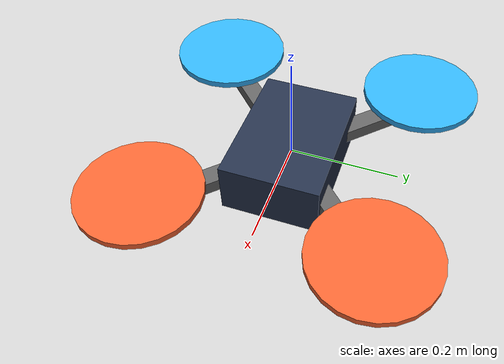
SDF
<?xml version="1.0"?>
<sdf version="1.9"><model name="quadrotor">
  <link name="base_link">
    <inertial><mass>1.0</mass><inertia><ixx>0.01</ixx><iyy>0.01</iyy><izz>0.02</izz></inertia></inertial>
    <collision name="hull"><geometry><box><size>0.64 0.64 0.16</size></box></geometry></collision>
    <visual name="body"><geometry><box><size>0.25 0.18 0.10</size></box></geometry><material><diffuse>0.15 0.2 0.3 1</diffuse></material></visual>
    <visual name="arm_x"><geometry><box><size>0.57 0.035 0.025</size></box></geometry><pose>0 0 0 0 0 0.785398</pose><material><diffuse>0.4 0.4 0.4 1</diffuse></material></visual>
    <visual name="arm_y"><geometry><box><size>0.57 0.035 0.025</size></box></geometry><pose>0 0 0 0 0 -0.785398</pose><material><diffuse>0.4 0.4 0.4 1</diffuse></material></visual>
    <visual name="rotor_0"><pose>-0.2 0.2 0.035 0 0 0</pose><geometry><cylinder><radius>0.11</radius><length>0.012</length></cylinder></geometry><material><diffuse>0.2 0.7 1 1</diffuse></material></visual>
    <visual name="rotor_1"><pose>-0.2 -0.2 0.035 0 0 0</pose><geometry><cylinder><radius>0.11</radius><length>0.012</length></cylinder></geometry><material><diffuse>0.2 0.7 1 1</diffuse></material></visual>
    <visual name="rotor_2"><pose>0.2 -0.2 0.035 0 0 0</pose><geometry><cylinder><radius>0.11</radius><length>0.012</length></cylinder></geometry><material><diffuse>1 0.4 0.2 1</diffuse></material></visual>
    <visual name="rotor_3"><pose>0.2 0.2 0.035 0 0 0</pose><geometry><cylinder><radius>0.11</radius><length>0.012</length></cylinder></geometry><material><diffuse>1 0.4 0.2 1</diffuse></material></visual>
    <sensor name="contact" type="contact"><always_on>true</always_on><update_rate>50</update_rate><topic>CONTACT_TOPIC</topic><contact><collision>hull</collision></contact></sensor>
    <sensor name="imu" type="imu"><always_on>true</always_on><update_rate>100</update_rate><topic>IMU_TOPIC</topic></sensor>
  </link>
  <plugin filename="annual_motor_system" name="annual::MotorSystem"><motor_time_constant>0.025</motor_time_constant></plugin>
</model></sdf>
